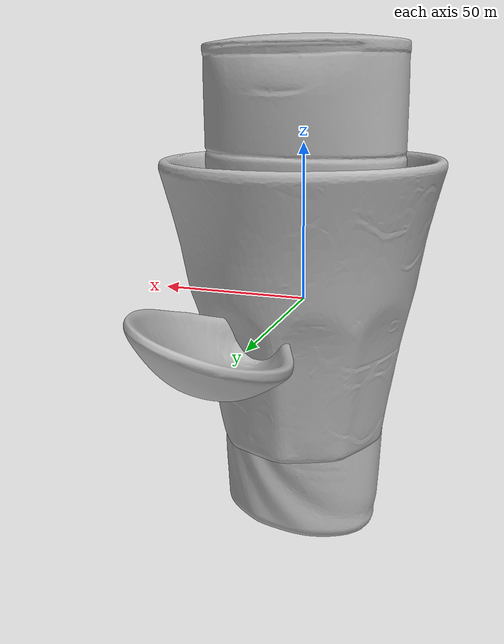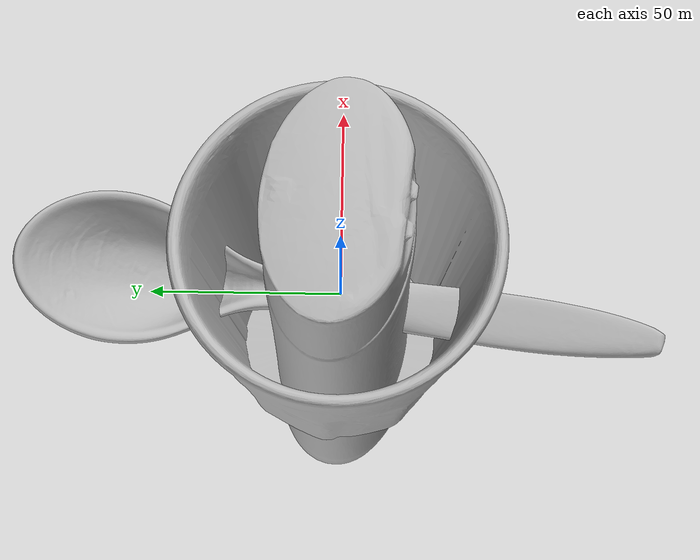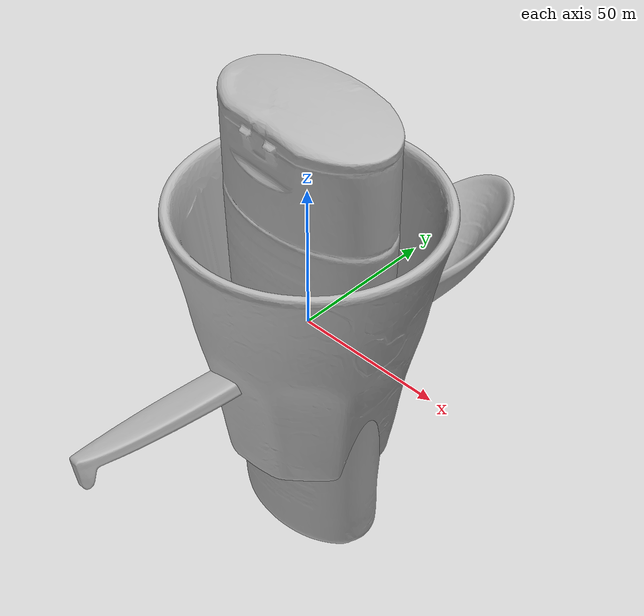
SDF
<sdf version="1.4">
 <world name="default">
  <light name="light1" type="point">
   <pose>0 0 1 0 0 0</pose>
   <diffuse>3 3 3 1</diffuse>
   <specular>3 3 3 1</specular>
  </light>
  <light name="light2" type="point">
   <pose>0 0.5 2 0 0 0</pose>
   <diffuse>1 1 1 1</diffuse>
   <specular>1 1 1 1</specular>
  </light>
  <light name="light3" type="point">
   <pose>0 0.5 2 0 0 0</pose>
   <diffuse>3 3 3 1</diffuse>
   <specular>3 3 3 1</specular>
  </light>
  <scene><ambient>0.7 0.7 0.7</ambient></scene>
  <model name="bottle1">
   <link name="link_bottle1">
    <collision name="default">
     <geometry>
      <mesh><uri>model://pure_zhen/collision_meshes/collision.obj</uri><scale>1.0 1.0 1.0</scale></mesh>
     </geometry>
     <surface>
      <friction><ode><mu>0.5</mu><mu2>0.5</mu2></ode></friction>
      <contact><ode><max_vel>0</max_vel><min_depth>0.0001</min_depth><kp>1e8</kp></ode></contact>
     </surface>
    </collision>
    <visual name="default">
     <geometry>
      <mesh><uri>model://pure_zhen/visual_meshes/visual.dae</uri><scale>1.0 1.0 1.0</scale></mesh>
     </geometry>
    </visual>
    <inertial>
     <mass>0.21128538250923157</mass>
     <pose>-8.582300506532192e-05 0.0002452346670906991 -0.0015797390369698405 -0.027642443229877835 0.005619248866174896 0.3057200614584077</pose>
     <inertia>
      <ixx>0.00063332287</ixx>
      <iyy>0.00063348823</iyy>
      <izz>6.6904315e-05</izz>
      <ixy>0</ixy>
      <ixz>0</ixz>
      <iyz>0</iyz>
     </inertia>
    </inertial>
   </link>
   <pose>0.17635783553123474 -0.1683870255947113 0.09194852411746979 0.019486326927065586 -0.016091188559196903 -0.2388351438250582</pose>
  </model>
  <model name="bottle2">
   <link name="link_bottle2">
    <collision name="default">
     <geometry>
      <mesh><uri>model://conditioner/collision_meshes/collision.obj</uri><scale>1.0 1.0 1.0</scale></mesh>
     </geometry>
     <surface>
      <friction><ode><mu>0.5</mu><mu2>0.5</mu2></ode></friction>
      <contact><ode><max_vel>0</max_vel><min_depth>0.0001</min_depth><kp>1e8</kp></ode></contact>
     </surface>
    </collision>
    <visual name="default">
     <geometry>
      <mesh><uri>model://conditioner/visual_meshes/visual.dae</uri><scale>1.0 1.0 1.0</scale></mesh>
     </geometry>
    </visual>
    <inertial>
     <mass>0.3611464500427246</mass>
     <pose>-0.00055994390277192 -0.0001729748910292983 0.004359682556241751 -0.005038374424784669 0.01530604350153207 0.015072341368129788</pose>
     <inertia>
      <ixx>0.00078562286</ixx>
      <iyy>0.0008415716</iyy>
      <izz>0.00012113213</izz>
      <ixy>0</ixy>
      <ixz>0</ixz>
      <iyz>0</iyz>
     </inertia>
    </inertial>
   </link>
   <pose>0.13312838971614838 -0.2581122815608978 0.08128130435943604 0.01393190499179047 -0.005913523296375187 3.0184168560009708</pose>
  </model>
  <model name="silverware1">
   <link name="link_silverware1">
    <collision name="default">
     <geometry>
      <mesh><uri>model://doraemon_spoon/collision_meshes/collision.obj</uri><scale>1.0 1.0 1.0</scale></mesh>
     </geometry>
     <surface>
      <friction><ode><mu>0.5</mu><mu2>0.5</mu2></ode></friction>
      <contact><ode><max_vel>0</max_vel><min_depth>0.0001</min_depth><kp>1e8</kp></ode></contact>
     </surface>
    </collision>
    <visual name="default">
     <geometry>
      <mesh><uri>model://doraemon_spoon/visual_meshes/visual.dae</uri><scale>1.0 1.0 1.0</scale></mesh>
     </geometry>
    </visual>
    <inertial>
     <mass>0.02099660225212574</mass>
     <pose>-0.02216508239507675 -0.0006374581134878099 -0.003332545980811119 -0.009147162014623967 0.07380421234862718 -0.01412382746948542</pose>
     <inertia>
      <ixx>1.6446534e-06</ixx>
      <iyy>4.671061e-05</iyy>
      <izz>4.7504738e-05</izz>
      <ixy>0</ixy>
      <ixz>0</ixz>
      <iyz>0</iyz>
     </inertia>
    </inertial>
   </link>
   <pose>-0.07653768360614777 -0.18095390498638153 0.014739342033863068 0.27879873721512927 -0.010334420620185096 -1.684134582225699</pose>
  </model>
  <model name="stationery1">
   <link name="link_stationery1">
    <collision name="default">
     <geometry>
      <mesh><uri>model://correction_fuid/collision_meshes/collision.obj</uri><scale>1.0 1.0 1.0</scale></mesh>
     </geometry>
     <surface>
      <friction><ode><mu>0.5</mu><mu2>0.5</mu2></ode></friction>
      <contact><ode><max_vel>0</max_vel><min_depth>0.0001</min_depth><kp>1e8</kp></ode></contact>
     </surface>
    </collision>
    <visual name="default">
     <geometry>
      <mesh><uri>model://correction_fuid/visual_meshes/visual.dae</uri><scale>1.0 1.0 1.0</scale></mesh>
     </geometry>
    </visual>
    <inertial>
     <mass>0.046645622700452805</mass>
     <pose>-0.00012557735317386687 -0.0009722909890115261 -0.001618212671019137 -0.010846607840907904 0.019488357502694276 -0.015992455488392</pose>
     <inertia>
      <ixx>4.5177083e-05</ixx>
      <iyy>2.7341744e-06</iyy>
      <izz>4.635291e-05</izz>
      <ixy>0</ixy>
      <ixz>0</ixz>
      <iyz>0</iyz>
     </inertia>
    </inertial>
   </link>
   <pose>0.24553772807121277 0.26529547572135925 0.009632826782763004 -0.0017271613597032924 -0.056167988091254756 1.9592028214958261</pose>
  </model>
  <model name="bowl1">
   <link name="link_bowl1">
    <collision name="default">
     <geometry>
      <mesh><uri>model://doraemon_bowl/collision_meshes/collision.obj</uri><scale>1.0 1.0 1.0</scale></mesh>
     </geometry>
     <surface>
      <friction><ode><mu>0.5</mu><mu2>0.5</mu2></ode></friction>
      <contact><ode><max_vel>0</max_vel><min_depth>0.0001</min_depth><kp>1e8</kp></ode></contact>
     </surface>
    </collision>
    <visual name="default">
     <geometry>
      <mesh><uri>model://doraemon_bowl/visual_meshes/visual.dae</uri><scale>1.0 1.0 1.0</scale></mesh>
     </geometry>
    </visual>
    <inertial>
     <mass>0.11811670660972595</mass>
     <pose>-0.014629551209509373 0.0004857121384702623 -0.0020864885300397873 -0.00509396228069995 -0.10568398533611668 -0.02642645986873745</pose>
     <inertia>
      <ixx>0.00016378764</ixx>
      <iyy>0.00021554313</iyy>
      <izz>0.00031711452</izz>
      <ixy>0</ixy>
      <ixz>0</ixz>
      <iyz>0</iyz>
     </inertia>
    </inertial>
   </link>
   <pose>0.04457799345254898 -0.11252249032258987 0.025889435783028603 0.009029408355512754 0.006665870116401616 0.9134900844425589</pose>
  </model>
  <model name="cup1">
   <link name="link_cup1">
    <collision name="default">
     <geometry>
      <mesh><uri>model://hello_kitty_cup/collision_meshes/collision.obj</uri><scale>1.0 1.0 1.0</scale></mesh>
     </geometry>
     <surface>
      <friction><ode><mu>0.5</mu><mu2>0.5</mu2></ode></friction>
      <contact><ode><max_vel>0</max_vel><min_depth>0.0001</min_depth><kp>1e8</kp></ode></contact>
     </surface>
    </collision>
    <visual name="default">
     <geometry>
      <mesh><uri>model://hello_kitty_cup/visual_meshes/visual.dae</uri><scale>1.0 1.0 1.0</scale></mesh>
     </geometry>
    </visual>
    <inertial>
     <mass>0.06522195786237717</mass>
     <pose>0.00027251147548668087 0.0002795039035845548 0.003044978016987443 0.05779148941225366 0.007964866585370347 -0.020452001862605422</pose>
     <inertia>
      <ixx>8.981858e-05</ixx>
      <iyy>9.081978e-05</iyy>
      <izz>7.573251e-05</izz>
      <ixy>0</ixy>
      <ixz>0</ixz>
      <iyz>0</iyz>
     </inertia>
    </inertial>
   </link>
   <pose>0.17631854116916656 0.2159329652786255 0.04621630907058716 -0.0058760575552346045 0.010794276420625163 1.188281674079267</pose>
  </model>
  <model name="plate1">
   <link name="link_plate1">
    <collision name="default">
     <geometry>
      <mesh><uri>model://hello_kitty_plate/collision_meshes/collision.obj</uri><scale>1.0 1.0 1.0</scale></mesh>
     </geometry>
     <surface>
      <friction><ode><mu>0.5</mu><mu2>0.5</mu2></ode></friction>
      <contact><ode><max_vel>0</max_vel><min_depth>0.0001</min_depth><kp>1e8</kp></ode></contact>
     </surface>
    </collision>
    <visual name="default">
     <geometry>
      <mesh><uri>model://hello_kitty_plate/visual_meshes/visual.dae</uri><scale>1.0 1.0 1.0</scale></mesh>
     </geometry>
    </visual>
    <inertial>
     <mass>0.08260300010442734</mass>
     <pose>0.0073142931796610355 0.0002893725468311459 -0.0027947169728577137 -0.00010432002488368626 -0.007054440417891238 -0.014449022362072891</pose>
     <inertia>
      <ixx>0.0001592833</ixx>
      <iyy>0.00030061565</iyy>
      <izz>0.0004564546</izz>
      <ixy>0</ixy>
      <ixz>0</ixz>
      <iyz>0</iyz>
     </inertia>
    </inertial>
   </link>
   <pose>0.054944220930337906 0.04537725821137428 0.008291369304060936 0.000460157164319823 0.004169871717995968 3.0356105946704663</pose>
  </model>
  <model name="box4">
   <link name="link_box4">
    <collision name="default">
     <geometry>
      <mesh><uri>model://wooden_puzzle1/collision_meshes/collision.obj</uri><scale>1.0 1.0 1.0</scale></mesh>
     </geometry>
     <surface>
      <friction><ode><mu>0.5</mu><mu2>0.5</mu2></ode></friction>
      <contact><ode><max_vel>0</max_vel><min_depth>0.0001</min_depth><kp>1e8</kp></ode></contact>
     </surface>
    </collision>
    <visual name="default">
     <geometry>
      <mesh><uri>model://wooden_puzzle1/visual_meshes/visual.dae</uri><scale>1.0 1.0 1.0</scale></mesh>
     </geometry>
    </visual>
    <inertial>
     <mass>0.034562814980745316</mass>
     <pose>-0.0001735068071866408 7.97226166469045e-05 -9.191555000143126e-05 -0.07784459827727222 -0.2636103773563706 -0.5528705263726328</pose>
     <inertia>
      <ixx>6.5210584e-06</ixx>
      <iyy>6.395525e-06</iyy>
      <izz>6.471823e-06</izz>
      <ixy>0</ixy>
      <ixz>0</ixz>
      <iyz>0</iyz>
     </inertia>
    </inertial>
   </link>
   <pose>0.1459147334098816 0.3798956871032715 0.016802003607153893 0.01051536707585607 -0.009457414202507789 -2.9189691484635363</pose>
  </model>
  <physics type="ode">
   <max_contacts>50</max_contacts>
   <ode>
    <solver><type>quick</type><iters>75</iters></solver>
    <constraints>
     <contact_max_correcting_vel>0</contact_max_correcting_vel>
     <contact_surface_layer>0</contact_surface_layer>
    </constraints>
   </ode>
  </physics>
 </world>
</sdf>
